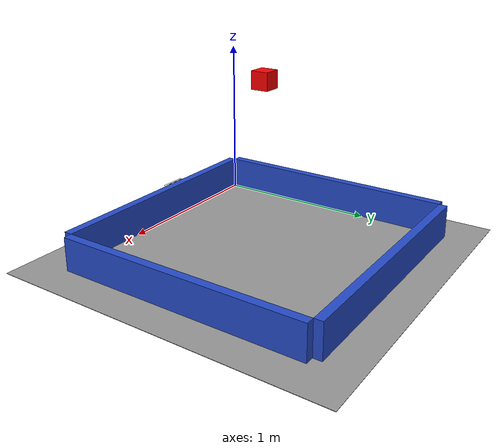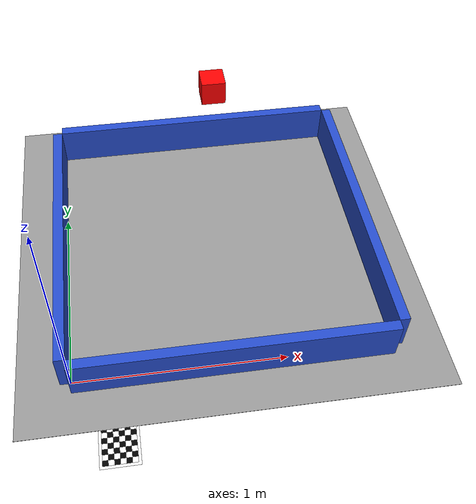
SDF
<?xml version="1.0"?>
<sdf version="1.6">
  <world name="robofetz_arena">
    <physics type="ode">
      <real_time_update_rate>1000</real_time_update_rate>
    </physics>
    <scene>
      <ambient>0.4 0.4 0.4 1</ambient>
      <background>0.7 0.7 0.7 1</background>
    </scene>
    <light name="sun" type="directional">
      <cast_shadows>false</cast_shadows>
      <pose>0 0 10 0 -0 0</pose>
      <diffuse>1 1 1 1</diffuse>
      <specular>0.1 0.1 0.1 1</specular>
      <attenuation>
        <range>1000</range>
        <constant>0.9</constant>
        <linear>0.01</linear>
        <quadratic>0.001</quadratic>
      </attenuation>
      <direction>-0.5 0.5 -1</direction>
    </light>

    <!-- Include the simple arena -->
    <include>
      <uri>model://simple_arena</uri>
    </include>

    <!-- Include the wide angle camera -->
    <include>
      <uri>model://arena_camera_wideangle</uri>
    </include>

    <!-- Include the arena april tag -->
    <include>
      <uri>model://arena_apriltag</uri>
    </include>

    <!-- Include the calibration checkerboard -->
    <include>
      <uri>model://calibration_checkerboard</uri>
    </include>

  </world>
</sdf>

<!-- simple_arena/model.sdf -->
<sdf version="1.6">
  <model name="simple_arena">
    <static>true</static>
    <!-- Ground Plane -->
    <link name="ground_plane">
      <pose>0.75 0.75 0 0 0 0</pose>
      <collision name="collision">
        <geometry>
          <plane>
            <normal>0 0 1</normal>
            <size>2 2</size>
          </plane>
        </geometry>
        <surface>
          <friction>
            <ode>
              <mu>1</mu>
              <mu2>1</mu2>
            </ode>
          </friction>
          <contact>
            <ode/>
          </contact>
        </surface>
      </collision>
      <visual name="visual">
        <geometry>
          <plane>
            <normal>0 0 1</normal>
            <size>2 2</size>
          </plane>
        </geometry>
        <material>
          <script>
            <uri>file://media/materials/scripts/gazebo.material</uri>
            <name>Gazebo/Gray</name>
          </script>
        </material>
      </visual>
    </link>
    <!-- Walls -->
    <link name="wall_north">
      <pose>0.75 1.525 0.1 0 0 0</pose>
      <collision name="collision">
        <geometry>
          <box>
            <size>1.5 0.05 0.2</size>
          </box>
        </geometry>
      </collision>
      <visual name="visual">
        <geometry>
          <box>
            <size>1.5 0.05 0.2</size>
          </box>
        </geometry>
        <material>
          <script>
            <uri>file://media/materials/scripts/gazebo.material</uri>
            <name>Gazebo/Blue</name>
          </script>
        </material>
      </visual>
    </link>
    <link name="wall_south">
      <pose>0.75 -0.025 0.1 0 0 0</pose>
      <collision name="collision">
        <geometry>
          <box>
            <size>1.5 0.05 0.2</size>
          </box>
        </geometry>
      </collision>
      <visual name="visual">
        <geometry>
          <box>
            <size>1.5 0.05 0.2</size>
          </box>
        </geometry>
        <material>
          <script>
            <uri>file://media/materials/scripts/gazebo.material</uri>
            <name>Gazebo/Blue</name>
          </script>
        </material>
      </visual>
    </link>
    <link name="wall_east">
      <pose>1.525 0.75 0.1 0 0 0</pose>
      <collision name="collision">
        <geometry>
          <box>
            <size>0.05 1.5 0.2</size>
          </box>
        </geometry>
      </collision>
      <visual name="visual">
        <geometry>
          <box>
            <size>0.05 1.5 0.2</size>
          </box>
        </geometry>
        <material>
          <script>
            <uri>file://media/materials/scripts/gazebo.material</uri>
            <name>Gazebo/Blue</name>
          </script>
        </material>
      </visual>
    </link>
    <link name="wall_west">
      <pose>-0.025 0.75 0.1 0 0 0</pose>
      <collision name="collision">
        <geometry>
          <box>
            <size>0.05 1.5 0.2</size>
          </box>
        </geometry>
      </collision>
      <visual name="visual">
        <geometry>
          <box>
            <size>0.05 1.5 0.2</size>
          </box>
        </geometry>
        <material>
          <script>
            <uri>file://media/materials/scripts/gazebo.material</uri>
            <name>Gazebo/Blue</name>
          </script>
        </material>
      </visual>
    </link>
  </model>
</sdf>

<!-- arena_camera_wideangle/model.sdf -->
<sdf version="1.6">
  <model name="arena_camera_wideangle">
    <static>true</static>
    <link name="link">
      <pose>0.75 0.75 1.0 0 1.5708 0</pose>

      <!-- Visual element to see the camera -->
      <visual name="camera_visual">
        <geometry>
          <box>
            <size>0.1 0.1 0.1</size>
          </box>
        </geometry>
        <material>
          <ambient>1 0 0 1</ambient>
          <diffuse>1 0 0 1</diffuse>
        </material>
      </visual>

      <sensor name="arena_camera" type="wideanglecamera">
        <pose>0 0 0 0 0 0</pose>
        <frame_id>arena_camera_optical</frame_id>
        <gz_frame_id>arena_camera_optical</gz_frame_id>
        <camera>
          <horizontal_fov>2.2689</horizontal_fov> <!-- 130 degrees -->
          <image>
            <width>800</width>
            <height>600</height>
            <format>R8G8B8</format>
          </image>
          <clip>
            <near>0.01</near>
            <far>2</far>
          </clip>

          <optical_frame_id>arena_camera_optical</optical_frame_id>
          <camera_info_topic>arena_camera/camera_info</camera_info_topic>

          <lens>
            <type>equidistant</type>
            <scale_to_hfov>true</scale_to_hfov>
            <cutoff_angle>1.5707</cutoff_angle>
            <env_texture_size>512</env_texture_size>
          </lens>
        </camera>
        <always_on>true</always_on>
        <update_rate>60</update_rate>
        <visualize>true</visualize>
        <topic>arena_camera/image</topic>
        <plugin filename="ignition-gazebo-sensors-system" name="ignition::gazebo::systems::Sensors">
          <render_engine>ogre2</render_engine>
        </plugin>
      </sensor>
    </link>
  </model>
</sdf>

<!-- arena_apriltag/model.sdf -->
<sdf version="1.9">
  <model name="arena_apriltag">
    <pose>0.125 0.125 0 0 0 0</pose>
    <static>true</static>
    <link name="link">
      <visual name="visual">
        <geometry>
          <box>
            <size>0.15 0.15 0.001</size>
          </box>
        </geometry>
        <material>
          <ambient>1 1 1 1</ambient>
          <diffuse>1 1 1 1</diffuse>
          <specular>0.5 0.5 0.5 1</specular>
          <pbr>
            <metal>
              <albedo_map>materials/textures/arena_apriltag.png</albedo_map>
              <roughness>0.5</roughness>
              <metalness>0.0</metalness>
            </metal>
          </pbr>
        </material>
      </visual>
      <collision name="collision">
        <geometry>
          <box>
            <size>0.15 0.15 0.001</size>
          </box>
        </geometry>
      </collision>
    </link>
  </model>
</sdf>

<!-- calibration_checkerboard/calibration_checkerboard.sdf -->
<sdf version="1.4">
  <model name="calibration_checkerboard">
  <pose>0.2 -0.3 0.0 0 0 0</pose>
  <static>true</static>
  <link name="calibration_checkerboard">
      <visual name="checker_0_0">
        <pose>-0.06349999999999999 -0.1016 0 0 0 0</pose>
        <geometry>
          <box>
            <size>0.0254 0.0254 0.0002</size>
          </box>
        </geometry>
        <material>
          <ambient>0 0 0 1</ambient>
          <diffuse>0 0 0 1</diffuse>
          <specular>0 0 0 1</specular>
          <emissive>0 0 0 1</emissive>
        </material>
      </visual>
      <visual name="checker_0_1">
        <pose>-0.06349999999999999 -0.0762 0 0 0 0</pose>
        <geometry>
          <box>
            <size>0.0254 0.0254 0.0002</size>
          </box>
        </geometry>
        <material>
          <ambient>1 1 1 1</ambient>
          <diffuse>1 1 1 1</diffuse>
          <specular>1 1 1 1</specular>
          <emissive>1 1 1 1</emissive>
        </material>
      </visual>
      <visual name="checker_0_2">
        <pose>-0.06349999999999999 -0.0508 0 0 0 0</pose>
        <geometry>
          <box>
            <size>0.0254 0.0254 0.0002</size>
          </box>
        </geometry>
        <material>
          <ambient>0 0 0 1</ambient>
          <diffuse>0 0 0 1</diffuse>
          <specular>0 0 0 1</specular>
          <emissive>0 0 0 1</emissive>
        </material>
      </visual>
      <visual name="checker_0_3">
        <pose>-0.06349999999999999 -0.025400000000000006 0 0 0 0</pose>
        <geometry>
          <box>
            <size>0.0254 0.0254 0.0002</size>
          </box>
        </geometry>
        <material>
          <ambient>1 1 1 1</ambient>
          <diffuse>1 1 1 1</diffuse>
          <specular>1 1 1 1</specular>
          <emissive>1 1 1 1</emissive>
        </material>
      </visual>
      <visual name="checker_0_4">
        <pose>-0.06349999999999999 0.0 0 0 0 0</pose>
        <geometry>
          <box>
            <size>0.0254 0.0254 0.0002</size>
          </box>
        </geometry>
        <material>
          <ambient>0 0 0 1</ambient>
          <diffuse>0 0 0 1</diffuse>
          <specular>0 0 0 1</specular>
          <emissive>0 0 0 1</emissive>
        </material>
      </visual>
      <visual name="checker_0_5">
        <pose>-0.06349999999999999 0.025399999999999992 0 0 0 0</pose>
        <geometry>
          <box>
            <size>0.0254 0.0254 0.0002</size>
          </box>
        </geometry>
        <material>
          <ambient>1 1 1 1</ambient>
          <diffuse>1 1 1 1</diffuse>
          <specular>1 1 1 1</specular>
          <emissive>1 1 1 1</emissive>
        </material>
      </visual>
      <visual name="checker_0_6">
        <pose>-0.06349999999999999 0.05079999999999997 0 0 0 0</pose>
        <geometry>
          <box>
            <size>0.0254 0.0254 0.0002</size>
          </box>
        </geometry>
        <material>
          <ambient>0 0 0 1</ambient>
          <diffuse>0 0 0 1</diffuse>
          <specular>0 0 0 1</specular>
          <emissive>0 0 0 1</emissive>
        </material>
      </visual>
      <visual name="checker_0_7">
        <pose>-0.06349999999999999 0.07619999999999998 0 0 0 0</pose>
        <geometry>
          <box>
            <size>0.0254 0.0254 0.0002</size>
          </box>
        </geometry>
        <material>
          <ambient>1 1 1 1</ambient>
          <diffuse>1 1 1 1</diffuse>
          <specular>1 1 1 1</specular>
          <emissive>1 1 1 1</emissive>
        </material>
      </visual>
      <visual name="checker_0_8">
        <pose>-0.06349999999999999 0.10159999999999998 0 0 0 0</pose>
        <geometry>
          <box>
            <size>0.0254 0.0254 0.0002</size>
          </box>
        </geometry>
        <material>
          <ambient>0 0 0 1</ambient>
          <diffuse>0 0 0 1</diffuse>
          <specular>0 0 0 1</specular>
          <emissive>0 0 0 1</emissive>
        </material>
      </visual>
      <visual name="checker_1_0">
        <pose>-0.038099999999999995 -0.1016 0 0 0 0</pose>
        <geometry>
          <box>
            <size>0.0254 0.0254 0.0002</size>
          </box>
        </geometry>
        <material>
          <ambient>1 1 1 1</ambient>
          <diffuse>1 1 1 1</diffuse>
          <specular>1 1 1 1</specular>
          <emissive>1 1 1 1</emissive>
        </material>
      </visual>
      <visual name="checker_1_1">
        <pose>-0.038099999999999995 -0.0762 0 0 0 0</pose>
        <geometry>
          <box>
            <size>0.0254 0.0254 0.0002</size>
          </box>
        </geometry>
        <material>
          <ambient>0 0 0 1</ambient>
          <diffuse>0 0 0 1</diffuse>
          <specular>0 0 0 1</specular>
          <emissive>0 0 0 1</emissive>
        </material>
      </visual>
      <visual name="checker_1_2">
        <pose>-0.038099999999999995 -0.0508 0 0 0 0</pose>
        <geometry>
          <box>
            <size>0.0254 0.0254 0.0002</size>
          </box>
        </geometry>
        <material>
          <ambient>1 1 1 1</ambient>
          <diffuse>1 1 1 1</diffuse>
          <specular>1 1 1 1</specular>
          <emissive>1 1 1 1</emissive>
        </material>
      </visual>
      <visual name="checker_1_3">
        <pose>-0.038099999999999995 -0.025400000000000006 0 0 0 0</pose>
        <geometry>
          <box>
            <size>0.0254 0.0254 0.0002</size>
          </box>
        </geometry>
        <material>
          <ambient>0 0 0 1</ambient>
          <diffuse>0 0 0 1</diffuse>
          <specular>0 0 0 1</specular>
          <emissive>0 0 0 1</emissive>
        </material>
      </visual>
      <visual name="checker_1_4">
        <pose>-0.038099999999999995 0.0 0 0 0 0</pose>
        <geometry>
          <box>
            <size>0.0254 0.0254 0.0002</size>
          </box>
        </geometry>
        <material>
          <ambient>1 1 1 1</ambient>
          <diffuse>1 1 1 1</diffuse>
          <specular>1 1 1 1</specular>
          <emissive>1 1 1 1</emissive>
        </material>
      </visual>
      <visual name="checker_1_5">
        <pose>-0.038099999999999995 0.025399999999999992 0 0 0 0</pose>
        <geometry>
          <box>
            <size>0.0254 0.0254 0.0002</size>
          </box>
        </geometry>
        <material>
          <ambient>0 0 0 1</ambient>
          <diffuse>0 0 0 1</diffuse>
          <specular>0 0 0 1</specular>
          <emissive>0 0 0 1</emissive>
        </material>
      </visual>
      <visual name="checker_1_6">
        <pose>-0.038099999999999995 0.05079999999999997 0 0 0 0</pose>
        <geometry>
          <box>
            <size>0.0254 0.0254 0.0002</size>
          </box>
        </geometry>
        <material>
          <ambient>1 1 1 1</ambient>
          <diffuse>1 1 1 1</diffuse>
          <specular>1 1 1 1</specular>
          <emissive>1 1 1 1</emissive>
        </material>
      </visual>
      <visual name="checker_1_7">
        <pose>-0.038099999999999995 0.07619999999999998 0 0 0 0</pose>
        <geometry>
          <box>
            <size>0.0254 0.0254 0.0002</size>
          </box>
        </geometry>
        <material>
          <ambient>0 0 0 1</ambient>
          <diffuse>0 0 0 1</diffuse>
          <specular>0 0 0 1</specular>
          <emissive>0 0 0 1</emissive>
        </material>
      </visual>
      <visual name="checker_1_8">
        <pose>-0.038099999999999995 0.10159999999999998 0 0 0 0</pose>
        <geometry>
          <box>
            <size>0.0254 0.0254 0.0002</size>
          </box>
        </geometry>
        <material>
          <ambient>1 1 1 1</ambient>
          <diffuse>1 1 1 1</diffuse>
          <specular>1 1 1 1</specular>
          <emissive>1 1 1 1</emissive>
        </material>
      </visual>
      <visual name="checker_2_0">
        <pose>-0.012699999999999989 -0.1016 0 0 0 0</pose>
        <geometry>
          <box>
            <size>0.0254 0.0254 0.0002</size>
          </box>
        </geometry>
        <material>
          <ambient>0 0 0 1</ambient>
          <diffuse>0 0 0 1</diffuse>
          <specular>0 0 0 1</specular>
          <emissive>0 0 0 1</emissive>
        </material>
      </visual>
      <visual name="checker_2_1">
        <pose>-0.012699999999999989 -0.0762 0 0 0 0</pose>
        <geometry>
          <box>
            <size>0.0254 0.0254 0.0002</size>
          </box>
        </geometry>
        <material>
          <ambient>1 1 1 1</ambient>
          <diffuse>1 1 1 1</diffuse>
          <specular>1 1 1 1</specular>
          <emissive>1 1 1 1</emissive>
        </material>
      </visual>
      <visual name="checker_2_2">
        <pose>-0.012699999999999989 -0.0508 0 0 0 0</pose>
        <geometry>
          <box>
            <size>0.0254 0.0254 0.0002</size>
          </box>
        </geometry>
        <material>
          <ambient>0 0 0 1</ambient>
          <diffuse>0 0 0 1</diffuse>
          <specular>0 0 0 1</specular>
          <emissive>0 0 0 1</emissive>
        </material>
      </visual>
      <visual name="checker_2_3">
        <pose>-0.012699999999999989 -0.025400000000000006 0 0 0 0</pose>
        <geometry>
          <box>
            <size>0.0254 0.0254 0.0002</size>
          </box>
        </geometry>
        <material>
          <ambient>1 1 1 1</ambient>
          <diffuse>1 1 1 1</diffuse>
          <specular>1 1 1 1</specular>
          <emissive>1 1 1 1</emissive>
        </material>
      </visual>
      <visual name="checker_2_4">
        <pose>-0.012699999999999989 0.0 0 0 0 0</pose>
        <geometry>
          <box>
            <size>0.0254 0.0254 0.0002</size>
          </box>
        </geometry>
        <material>
          <ambient>0 0 0 1</ambient>
          <diffuse>0 0 0 1</diffuse>
          <specular>0 0 0 1</specular>
          <emissive>0 0 0 1</emissive>
        </material>
      </visual>
      <visual name="checker_2_5">
        <pose>-0.012699999999999989 0.025399999999999992 0 0 0 0</pose>
        <geometry>
          <box>
            <size>0.0254 0.0254 0.0002</size>
          </box>
        </geometry>
        <material>
          <ambient>1 1 1 1</ambient>
          <diffuse>1 1 1 1</diffuse>
          <specular>1 1 1 1</specular>
          <emissive>1 1 1 1</emissive>
        </material>
      </visual>
      <visual name="checker_2_6">
        <pose>-0.012699999999999989 0.05079999999999997 0 0 0 0</pose>
        <geometry>
          <box>
            <size>0.0254 0.0254 0.0002</size>
          </box>
        </geometry>
        <material>
          <ambient>0 0 0 1</ambient>
          <diffuse>0 0 0 1</diffuse>
          <specular>0 0 0 1</specular>
          <emissive>0 0 0 1</emissive>
        </material>
      </visual>
      <visual name="checker_2_7">
        <pose>-0.012699999999999989 0.07619999999999998 0 0 0 0</pose>
        <geometry>
          <box>
            <size>0.0254 0.0254 0.0002</size>
          </box>
        </geometry>
        <material>
          <ambient>1 1 1 1</ambient>
          <diffuse>1 1 1 1</diffuse>
          <specular>1 1 1 1</specular>
          <emissive>1 1 1 1</emissive>
        </material>
      </visual>
      <visual name="checker_2_8">
        <pose>-0.012699999999999989 0.10159999999999998 0 0 0 0</pose>
        <geometry>
          <box>
            <size>0.0254 0.0254 0.0002</size>
          </box>
        </geometry>
        <material>
          <ambient>0 0 0 1</ambient>
          <diffuse>0 0 0 1</diffuse>
          <specular>0 0 0 1</specular>
          <emissive>0 0 0 1</emissive>
        </material>
      </visual>
      <visual name="checker_3_0">
        <pose>0.012700000000000003 -0.1016 0 0 0 0</pose>
        <geometry>
          <box>
            <size>0.0254 0.0254 0.0002</size>
          </box>
        </geometry>
        <material>
          <ambient>1 1 1 1</ambient>
          <diffuse>1 1 1 1</diffuse>
          <specular>1 1 1 1</specular>
          <emissive>1 1 1 1</emissive>
        </material>
      </visual>
      <visual name="checker_3_1">
        <pose>0.012700000000000003 -0.0762 0 0 0 0</pose>
        <geometry>
          <box>
            <size>0.0254 0.0254 0.0002</size>
          </box>
        </geometry>
        <material>
          <ambient>0 0 0 1</ambient>
          <diffuse>0 0 0 1</diffuse>
          <specular>0 0 0 1</specular>
          <emissive>0 0 0 1</emissive>
        </material>
      </visual>
      <visual name="checker_3_2">
        <pose>0.012700000000000003 -0.0508 0 0 0 0</pose>
        <geometry>
          <box>
            <size>0.0254 0.0254 0.0002</size>
          </box>
        </geometry>
        <material>
          <ambient>1 1 1 1</ambient>
          <diffuse>1 1 1 1</diffuse>
          <specular>1 1 1 1</specular>
          <emissive>1 1 1 1</emissive>
        </material>
      </visual>
      <visual name="checker_3_3">
        <pose>0.012700000000000003 -0.025400000000000006 0 0 0 0</pose>
        <geometry>
          <box>
            <size>0.0254 0.0254 0.0002</size>
          </box>
        </geometry>
        <material>
          <ambient>0 0 0 1</ambient>
          <diffuse>0 0 0 1</diffuse>
          <specular>0 0 0 1</specular>
          <emissive>0 0 0 1</emissive>
        </material>
      </visual>
      <visual name="checker_3_4">
        <pose>0.012700000000000003 0.0 0 0 0 0</pose>
        <geometry>
          <box>
            <size>0.0254 0.0254 0.0002</size>
          </box>
        </geometry>
        <material>
          <ambient>1 1 1 1</ambient>
          <diffuse>1 1 1 1</diffuse>
          <specular>1 1 1 1</specular>
          <emissive>1 1 1 1</emissive>
        </material>
      </visual>
      <visual name="checker_3_5">
        <pose>0.012700000000000003 0.025399999999999992 0 0 0 0</pose>
        <geometry>
          <box>
            <size>0.0254 0.0254 0.0002</size>
          </box>
        </geometry>
        <material>
          <ambient>0 0 0 1</ambient>
          <diffuse>0 0 0 1</diffuse>
          <specular>0 0 0 1</specular>
          <emissive>0 0 0 1</emissive>
        </material>
      </visual>
      <visual name="checker_3_6">
        <pose>0.012700000000000003 0.05079999999999997 0 0 0 0</pose>
        <geometry>
          <box>
            <size>0.0254 0.0254 0.0002</size>
          </box>
        </geometry>
        <material>
          <ambient>1 1 1 1</ambient>
          <diffuse>1 1 1 1</diffuse>
          <specular>1 1 1 1</specular>
          <emissive>1 1 1 1</emissive>
        </material>
      </visual>
      <visual name="checker_3_7">
        <pose>0.012700000000000003 0.07619999999999998 0 0 0 0</pose>
        <geometry>
          <box>
            <size>0.0254 0.0254 0.0002</size>
          </box>
        </geometry>
        <material>
          <ambient>0 0 0 1</ambient>
          <diffuse>0 0 0 1</diffuse>
          <specular>0 0 0 1</specular>
          <emissive>0 0 0 1</emissive>
        </material>
      </visual>
      <visual name="checker_3_8">
        <pose>0.012700000000000003 0.10159999999999998 0 0 0 0</pose>
        <geometry>
          <box>
            <size>0.0254 0.0254 0.0002</size>
          </box>
        </geometry>
        <material>
          <ambient>1 1 1 1</ambient>
          <diffuse>1 1 1 1</diffuse>
          <specular>1 1 1 1</specular>
          <emissive>1 1 1 1</emissive>
        </material>
      </visual>
      <visual name="checker_4_0">
        <pose>0.03810000000000001 -0.1016 0 0 0 0</pose>
        <geometry>
          <box>
            <size>0.0254 0.0254 0.0002</size>
          </box>
        </geometry>
        <material>
          <ambient>0 0 0 1</ambient>
          <diffuse>0 0 0 1</diffuse>
          <specular>0 0 0 1</specular>
          <emissive>0 0 0 1</emissive>
        </material>
      </visual>
      <visual name="checker_4_1">
        <pose>0.03810000000000001 -0.0762 0 0 0 0</pose>
        <geometry>
          <box>
            <size>0.0254 0.0254 0.0002</size>
          </box>
        </geometry>
        <material>
          <ambient>1 1 1 1</ambient>
          <diffuse>1 1 1 1</diffuse>
          <specular>1 1 1 1</specular>
          <emissive>1 1 1 1</emissive>
        </material>
      </visual>
      <visual name="checker_4_2">
        <pose>0.03810000000000001 -0.0508 0 0 0 0</pose>
        <geometry>
          <box>
            <size>0.0254 0.0254 0.0002</size>
          </box>
        </geometry>
        <material>
          <ambient>0 0 0 1</ambient>
          <diffuse>0 0 0 1</diffuse>
          <specular>0 0 0 1</specular>
          <emissive>0 0 0 1</emissive>
        </material>
      </visual>
      <visual name="checker_4_3">
        <pose>0.03810000000000001 -0.025400000000000006 0 0 0 0</pose>
        <geometry>
          <box>
            <size>0.0254 0.0254 0.0002</size>
          </box>
        </geometry>
        <material>
          <ambient>1 1 1 1</ambient>
          <diffuse>1 1 1 1</diffuse>
          <specular>1 1 1 1</specular>
          <emissive>1 1 1 1</emissive>
        </material>
      </visual>
      <visual name="checker_4_4">
        <pose>0.03810000000000001 0.0 0 0 0 0</pose>
        <geometry>
          <box>
            <size>0.0254 0.0254 0.0002</size>
          </box>
        </geometry>
        <material>
          <ambient>0 0 0 1</ambient>
          <diffuse>0 0 0 1</diffuse>
          <specular>0 0 0 1</specular>
          <emissive>0 0 0 1</emissive>
        </material>
      </visual>
      <visual name="checker_4_5">
        <pose>0.03810000000000001 0.025399999999999992 0 0 0 0</pose>
        <geometry>
          <box>
            <size>0.0254 0.0254 0.0002</size>
          </box>
        </geometry>
        <material>
          <ambient>1 1 1 1</ambient>
          <diffuse>1 1 1 1</diffuse>
          <specular>1 1 1 1</specular>
          <emissive>1 1 1 1</emissive>
        </material>
      </visual>
      <visual name="checker_4_6">
        <pose>0.03810000000000001 0.05079999999999997 0 0 0 0</pose>
        <geometry>
          <box>
            <size>0.0254 0.0254 0.0002</size>
          </box>
        </geometry>
        <material>
          <ambient>0 0 0 1</ambient>
          <diffuse>0 0 0 1</diffuse>
          <specular>0 0 0 1</specular>
          <emissive>0 0 0 1</emissive>
        </material>
      </visual>
      <visual name="checker_4_7">
        <pose>0.03810000000000001 0.07619999999999998 0 0 0 0</pose>
        <geometry>
          <box>
            <size>0.0254 0.0254 0.0002</size>
          </box>
        </geometry>
        <material>
          <ambient>1 1 1 1</ambient>
          <diffuse>1 1 1 1</diffuse>
          <specular>1 1 1 1</specular>
          <emissive>1 1 1 1</emissive>
        </material>
      </visual>
      <visual name="checker_4_8">
        <pose>0.03810000000000001 0.10159999999999998 0 0 0 0</pose>
        <geometry>
          <box>
            <size>0.0254 0.0254 0.0002</size>
          </box>
        </geometry>
        <material>
          <ambient>0 0 0 1</ambient>
          <diffuse>0 0 0 1</diffuse>
          <specular>0 0 0 1</specular>
          <emissive>0 0 0 1</emissive>
        </material>
      </visual>
      <visual name="checker_5_0">
        <pose>0.0635 -0.1016 0 0 0 0</pose>
        <geometry>
          <box>
            <size>0.0254 0.0254 0.0002</size>
          </box>
        </geometry>
        <material>
          <ambient>1 1 1 1</ambient>
          <diffuse>1 1 1 1</diffuse>
          <specular>1 1 1 1</specular>
          <emissive>1 1 1 1</emissive>
        </material>
      </visual>
      <visual name="checker_5_1">
        <pose>0.0635 -0.0762 0 0 0 0</pose>
        <geometry>
          <box>
            <size>0.0254 0.0254 0.0002</size>
          </box>
        </geometry>
        <material>
          <ambient>0 0 0 1</ambient>
          <diffuse>0 0 0 1</diffuse>
          <specular>0 0 0 1</specular>
          <emissive>0 0 0 1</emissive>
        </material>
      </visual>
      <visual name="checker_5_2">
        <pose>0.0635 -0.0508 0 0 0 0</pose>
        <geometry>
          <box>
            <size>0.0254 0.0254 0.0002</size>
          </box>
        </geometry>
        <material>
          <ambient>1 1 1 1</ambient>
          <diffuse>1 1 1 1</diffuse>
          <specular>1 1 1 1</specular>
          <emissive>1 1 1 1</emissive>
        </material>
      </visual>
      <visual name="checker_5_3">
        <pose>0.0635 -0.025400000000000006 0 0 0 0</pose>
        <geometry>
          <box>
            <size>0.0254 0.0254 0.0002</size>
          </box>
        </geometry>
        <material>
          <ambient>0 0 0 1</ambient>
          <diffuse>0 0 0 1</diffuse>
          <specular>0 0 0 1</specular>
          <emissive>0 0 0 1</emissive>
        </material>
      </visual>
      <visual name="checker_5_4">
        <pose>0.0635 0.0 0 0 0 0</pose>
        <geometry>
          <box>
            <size>0.0254 0.0254 0.0002</size>
          </box>
        </geometry>
        <material>
          <ambient>1 1 1 1</ambient>
          <diffuse>1 1 1 1</diffuse>
          <specular>1 1 1 1</specular>
          <emissive>1 1 1 1</emissive>
        </material>
      </visual>
      <visual name="checker_5_5">
        <pose>0.0635 0.025399999999999992 0 0 0 0</pose>
        <geometry>
          <box>
            <size>0.0254 0.0254 0.0002</size>
          </box>
        </geometry>
        <material>
          <ambient>0 0 0 1</ambient>
          <diffuse>0 0 0 1</diffuse>
          <specular>0 0 0 1</specular>
          <emissive>0 0 0 1</emissive>
        </material>
      </visual>
      <visual name="checker_5_6">
        <pose>0.0635 0.05079999999999997 0 0 0 0</pose>
        <geometry>
          <box>
            <size>0.0254 0.0254 0.0002</size>
          </box>
        </geometry>
        <material>
          <ambient>1 1 1 1</ambient>
          <diffuse>1 1 1 1</diffuse>
          <specular>1 1 1 1</specular>
          <emissive>1 1 1 1</emissive>
        </material>
      </visual>
      <visual name="checker_5_7">
        <pose>0.0635 0.07619999999999998 0 0 0 0</pose>
        <geometry>
          <box>
            <size>0.0254 0.0254 0.0002</size>
          </box>
        </geometry>
        <material>
          <ambient>0 0 0 1</ambient>
          <diffuse>0 0 0 1</diffuse>
          <specular>0 0 0 1</specular>
          <emissive>0 0 0 1</emissive>
        </material>
      </visual>
      <visual name="checker_5_8">
        <pose>0.0635 0.10159999999999998 0 0 0 0</pose>
        <geometry>
          <box>
            <size>0.0254 0.0254 0.0002</size>
          </box>
        </geometry>
        <material>
          <ambient>1 1 1 1</ambient>
          <diffuse>1 1 1 1</diffuse>
          <specular>1 1 1 1</specular>
          <emissive>1 1 1 1</emissive>
        </material>
      </visual>
      <visual name="checker_backdrop">
        <pose>0.0 0.0 -0.0001 0 0 0</pose>
        <geometry>
          <box>
            <size>0.17779999999999999 0.254 0.0001</size>
          </box>
        </geometry>
        <material>
          <ambient>1 1 1 1</ambient>
          <diffuse>1 1 1 1</diffuse>
          <specular>1 1 1 1</specular>
          <emissive>1 1 1 1</emissive>
        </material>
      </visual>    <collision name="collision">
        <pose>0.0 0.0 -0.0001 0 0 0</pose>
        <geometry>
          <box>
            <size>0.17779999999999999 0.254 0.0001</size>
          </box>
        </geometry>
    </collision>
    </link>
  </model>
</sdf>
